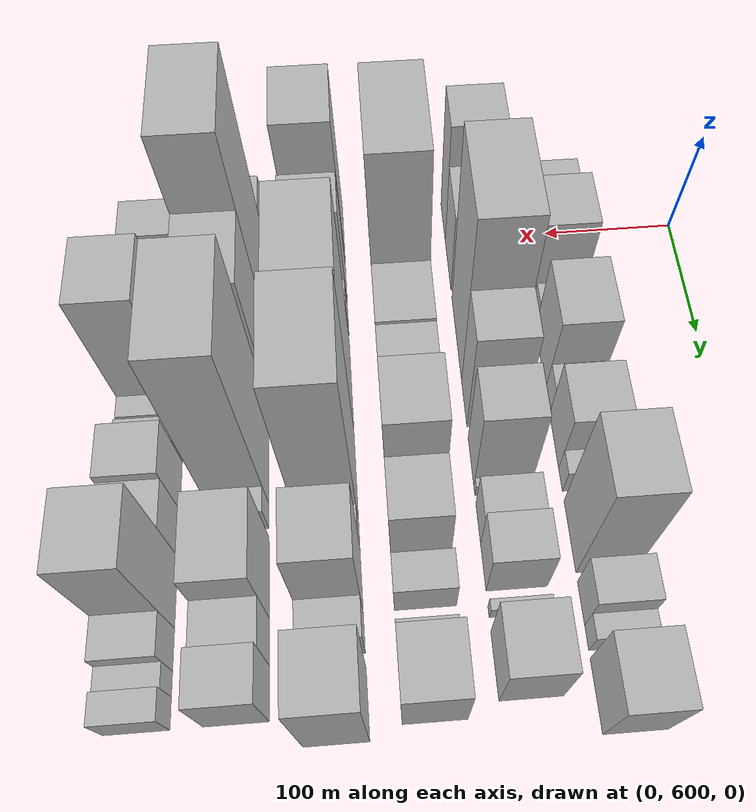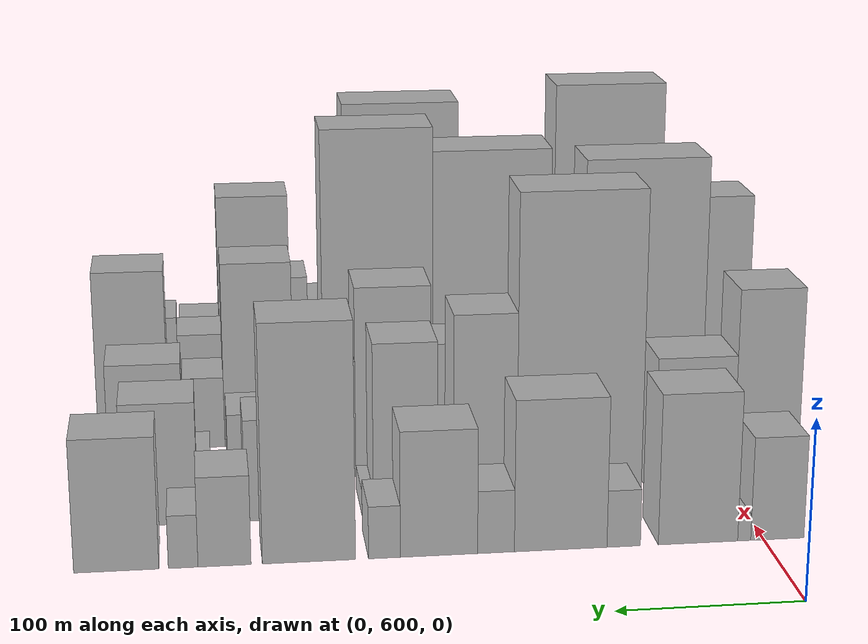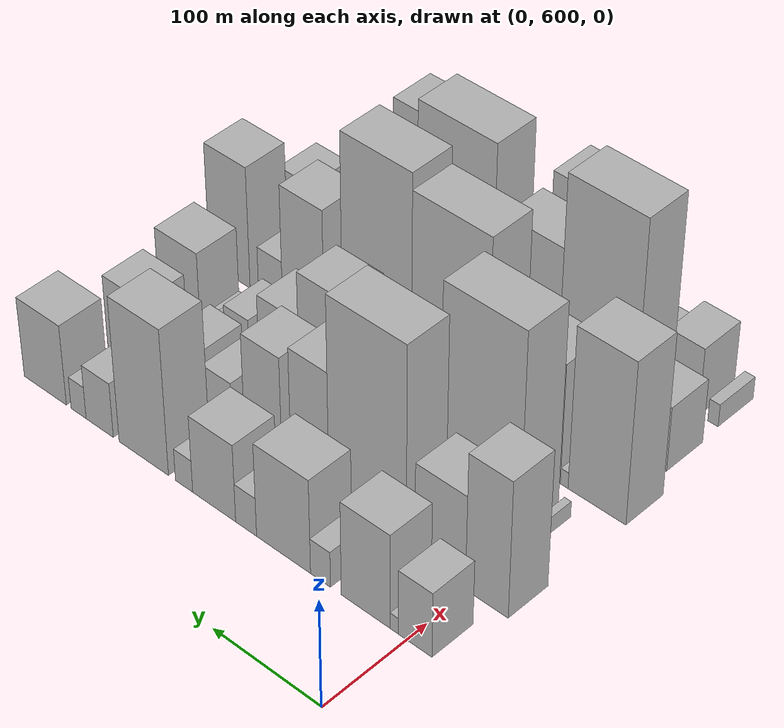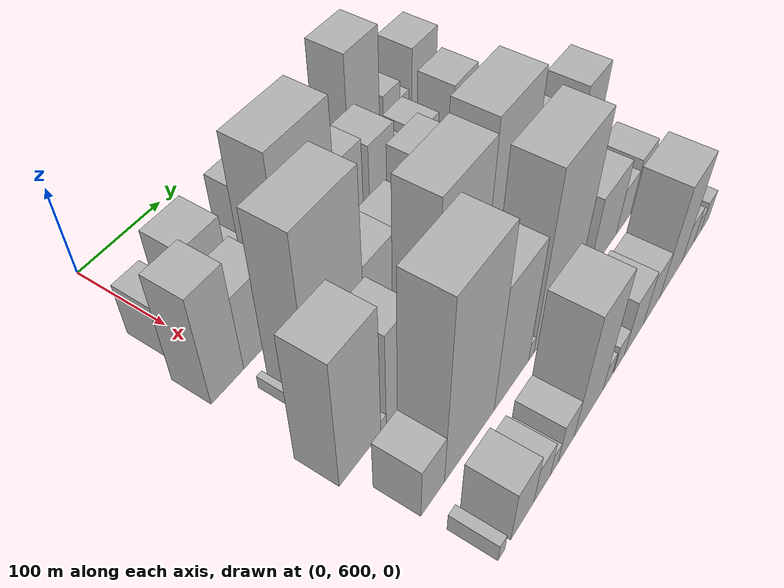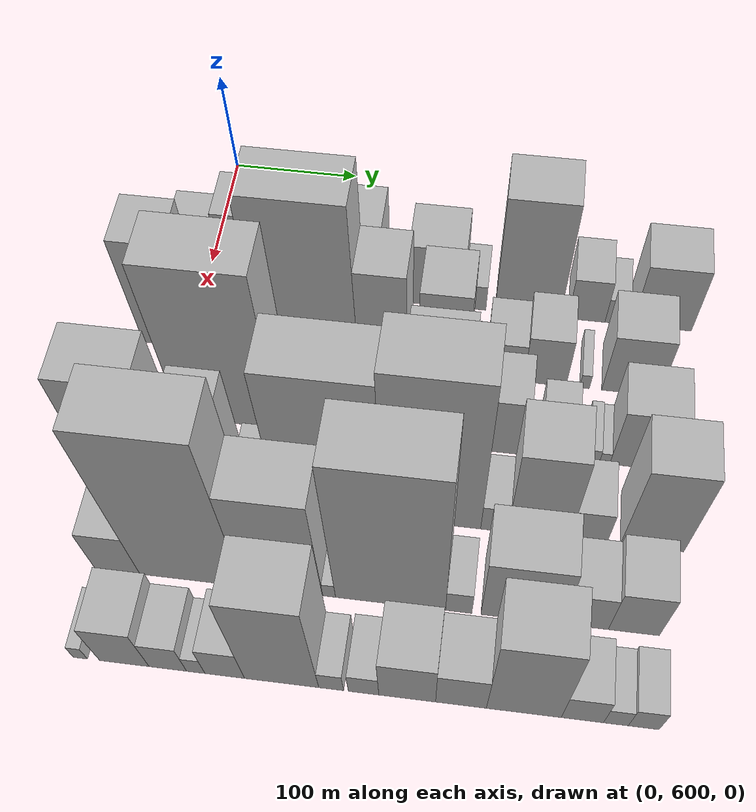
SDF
<sdf version="1.6">
 <world name="default">
  <model name="building_45">
   <static>1</static>
   <pose>100.0000 592.5048 0 0.000000 0.000000 0.000000</pose>
   <link name="link">
    <pose>0 0 30.00 0 0 0</pose>
    <collision name="collision"><geometry><box><size>40.0000 30.1340 60.0000</size></box></geometry></collision>
    <visual name="visual">
     <cast_shadows>0</cast_shadows>
     <geometry><box><size>40.0000 30.1340 60.0000</size></box></geometry>
     <material>
      <script>
       <uri>model://HANNAS_wall/materials/scripts</uri>
       <uri>model://HANNAS_wall/materials/textures</uri>
       <name>vrc/HANNAS_wall</name>
      </script>
     </material>
    </visual>
   </link>
  </model>
  <model name="building_46">
   <static>1</static>
   <pose>100.0000 611.2517 0 0.000000 0.000000 0.000000</pose>
   <link name="link">
    <pose>0 0 7.50 0 0 0</pose>
    <collision name="collision"><geometry><box><size>40.0000 7.3597 15.0000</size></box></geometry></collision>
    <visual name="visual">
     <cast_shadows>0</cast_shadows>
     <geometry><box><size>40.0000 7.3597 15.0000</size></box></geometry>
     <material>
      <script>
       <uri>model://HANNAS_wall/materials/scripts</uri>
       <uri>model://HANNAS_wall/materials/textures</uri>
       <name>vrc/HANNAS_wall</name>
      </script>
     </material>
    </visual>
   </link>
  </model>
  <model name="building_47">
   <static>1</static>
   <pose>100.0000 637.2125 0 0.000000 0.000000 0.000000</pose>
   <link name="link">
    <pose>0 0 43.50 0 0 0</pose>
    <collision name="collision"><geometry><box><size>40.0000 44.5620 87.0000</size></box></geometry></collision>
    <visual name="visual">
     <cast_shadows>0</cast_shadows>
     <geometry><box><size>40.0000 44.5620 87.0000</size></box></geometry>
     <material>
      <script>
       <uri>model://HANNAS_wall/materials/scripts</uri>
       <uri>model://HANNAS_wall/materials/textures</uri>
       <name>vrc/HANNAS_wall</name>
      </script>
     </material>
    </visual>
   </link>
  </model>
  <model name="building_48">
   <static>1</static>
   <pose>100.0000 678.7897 0 0.000000 0.000000 0.000000</pose>
   <link name="link">
    <pose>0 0 16.50 0 0 0</pose>
    <collision name="collision"><geometry><box><size>40.0000 18.5924 33.0000</size></box></geometry></collision>
    <visual name="visual">
     <cast_shadows>0</cast_shadows>
     <geometry><box><size>40.0000 18.5924 33.0000</size></box></geometry>
     <material>
      <script>
       <uri>model://HANNAS_wall/materials/scripts</uri>
       <uri>model://HANNAS_wall/materials/textures</uri>
       <name>vrc/HANNAS_wall</name>
      </script>
     </material>
    </visual>
   </link>
  </model>
  <model name="building_49">
   <static>1</static>
   <pose>100.0000 713.6785 0 0.000000 0.000000 0.000000</pose>
   <link name="link">
    <pose>0 0 43.50 0 0 0</pose>
    <collision name="collision"><geometry><box><size>40.0000 51.1852 87.0000</size></box></geometry></collision>
    <visual name="visual">
     <cast_shadows>0</cast_shadows>
     <geometry><box><size>40.0000 51.1852 87.0000</size></box></geometry>
     <material>
      <script>
       <uri>model://HANNAS_wall/materials/scripts</uri>
       <uri>model://HANNAS_wall/materials/textures</uri>
       <name>vrc/HANNAS_wall</name>
      </script>
     </material>
    </visual>
   </link>
  </model>
  <model name="building_50">
   <static>1</static>
   <pose>100.0000 749.3650 0 0.000000 0.000000 0.000000</pose>
   <link name="link">
    <pose>0 0 18.00 0 0 0</pose>
    <collision name="collision"><geometry><box><size>40.0000 20.1879 36.0000</size></box></geometry></collision>
    <visual name="visual">
     <cast_shadows>0</cast_shadows>
     <geometry><box><size>40.0000 20.1879 36.0000</size></box></geometry>
     <material>
      <script>
       <uri>model://HANNAS_wall/materials/scripts</uri>
       <uri>model://HANNAS_wall/materials/textures</uri>
       <name>vrc/HANNAS_wall</name>
      </script>
     </material>
    </visual>
   </link>
  </model>
  <model name="building_51">
   <static>1</static>
   <pose>100.0000 780.5557 0 0.000000 0.000000 0.000000</pose>
   <link name="link">
    <pose>0 0 36.00 0 0 0</pose>
    <collision name="collision"><geometry><box><size>40.0000 42.1935 72.0000</size></box></geometry></collision>
    <visual name="visual">
     <cast_shadows>0</cast_shadows>
     <geometry><box><size>40.0000 42.1935 72.0000</size></box></geometry>
     <material>
      <script>
       <uri>model://HANNAS_wall/materials/scripts</uri>
       <uri>model://HANNAS_wall/materials/textures</uri>
       <name>vrc/HANNAS_wall</name>
      </script>
     </material>
    </visual>
   </link>
  </model>
  <model name="building_52">
   <static>1</static>
   <pose>100.0000 810.2517 0 0.000000 0.000000 0.000000</pose>
   <link name="link">
    <pose>0 0 15.00 0 0 0</pose>
    <collision name="collision"><geometry><box><size>40.0000 17.1986 30.0000</size></box></geometry></collision>
    <visual name="visual">
     <cast_shadows>0</cast_shadows>
     <geometry><box><size>40.0000 17.1986 30.0000</size></box></geometry>
     <material>
      <script>
       <uri>model://HANNAS_wall/materials/scripts</uri>
       <uri>model://HANNAS_wall/materials/textures</uri>
       <name>vrc/HANNAS_wall</name>
      </script>
     </material>
    </visual>
   </link>
  </model>
  <model name="building_53">
   <static>1</static>
   <pose>100.0000 850.9183 0 0.000000 0.000000 0.000000</pose>
   <link name="link">
    <pose>0 0 67.50 0 0 0</pose>
    <collision name="collision"><geometry><box><size>40.0000 50.1346 135.0000</size></box></geometry></collision>
    <visual name="visual">
     <cast_shadows>0</cast_shadows>
     <geometry><box><size>40.0000 50.1346 135.0000</size></box></geometry>
     <material>
      <script>
       <uri>model://HANNAS_wall/materials/scripts</uri>
       <uri>model://HANNAS_wall/materials/textures</uri>
       <name>vrc/HANNAS_wall</name>
      </script>
     </material>
    </visual>
   </link>
  </model>
  <model name="building_54">
   <static>1</static>
   <pose>100.0000 896.1331 0 0.000000 0.000000 0.000000</pose>
   <link name="link">
    <pose>0 0 25.50 0 0 0</pose>
    <collision name="collision"><geometry><box><size>40.0000 28.2950 51.0000</size></box></geometry></collision>
    <visual name="visual">
     <cast_shadows>0</cast_shadows>
     <geometry><box><size>40.0000 28.2950 51.0000</size></box></geometry>
     <material>
      <script>
       <uri>model://HANNAS_wall/materials/scripts</uri>
       <uri>model://HANNAS_wall/materials/textures</uri>
       <name>vrc/HANNAS_wall</name>
      </script>
     </material>
    </visual>
   </link>
  </model>
  <model name="building_55">
   <static>1</static>
   <pose>100.0000 918.1564 0 0.000000 0.000000 0.000000</pose>
   <link name="link">
    <pose>0 0 15.00 0 0 0</pose>
    <collision name="collision"><geometry><box><size>40.0000 15.7516 30.0000</size></box></geometry></collision>
    <visual name="visual">
     <cast_shadows>0</cast_shadows>
     <geometry><box><size>40.0000 15.7516 30.0000</size></box></geometry>
     <material>
      <script>
       <uri>model://HANNAS_wall/materials/scripts</uri>
       <uri>model://HANNAS_wall/materials/textures</uri>
       <name>vrc/HANNAS_wall</name>
      </script>
     </material>
    </visual>
   </link>
  </model>
  <model name="building_56">
   <static>1</static>
   <pose>100.0000 953.4646 0 0.000000 0.000000 0.000000</pose>
   <link name="link">
    <pose>0 0 37.50 0 0 0</pose>
    <collision name="collision"><geometry><box><size>40.0000 44.8649 75.0000</size></box></geometry></collision>
    <visual name="visual">
     <cast_shadows>0</cast_shadows>
     <geometry><box><size>40.0000 44.8649 75.0000</size></box></geometry>
     <material>
      <script>
       <uri>model://HANNAS_wall/materials/scripts</uri>
       <uri>model://HANNAS_wall/materials/textures</uri>
       <name>vrc/HANNAS_wall</name>
      </script>
     </material>
    </visual>
   </link>
  </model>
  <model name="building_100">
   <static>1</static>
   <pose>160.0000 583.1754 0 0.000000 0.000000 0.000000</pose>
   <link name="link">
    <pose>0 0 63.00 0 0 0</pose>
    <collision name="collision"><geometry><box><size>40.0000 38.1001 126.0000</size></box></geometry></collision>
    <visual name="visual">
     <cast_shadows>0</cast_shadows>
     <geometry><box><size>40.0000 38.1001 126.0000</size></box></geometry>
     <material>
      <script>
       <uri>model://HANNAS_wall/materials/scripts</uri>
       <uri>model://HANNAS_wall/materials/textures</uri>
       <name>vrc/HANNAS_wall</name>
      </script>
     </material>
    </visual>
   </link>
  </model>
  <model name="building_101">
   <static>1</static>
   <pose>160.0000 625.2225 0 0.000000 0.000000 0.000000</pose>
   <link name="link">
    <pose>0 0 43.50 0 0 0</pose>
    <collision name="collision"><geometry><box><size>40.0000 45.9942 87.0000</size></box></geometry></collision>
    <visual name="visual">
     <cast_shadows>0</cast_shadows>
     <geometry><box><size>40.0000 45.9942 87.0000</size></box></geometry>
     <material>
      <script>
       <uri>model://HANNAS_wall/materials/scripts</uri>
       <uri>model://HANNAS_wall/materials/textures</uri>
       <name>vrc/HANNAS_wall</name>
      </script>
     </material>
    </visual>
   </link>
  </model>
  <model name="building_102">
   <static>1</static>
   <pose>160.0000 692.4335 0 0.000000 0.000000 0.000000</pose>
   <link name="link">
    <pose>0 0 93.00 0 0 0</pose>
    <collision name="collision"><geometry><box><size>40.0000 72.4277 186.0000</size></box></geometry></collision>
    <visual name="visual">
     <cast_shadows>0</cast_shadows>
     <geometry><box><size>40.0000 72.4277 186.0000</size></box></geometry>
     <material>
      <script>
       <uri>model://HANNAS_wall/materials/scripts</uri>
       <uri>model://HANNAS_wall/materials/textures</uri>
       <name>vrc/HANNAS_wall</name>
      </script>
     </material>
    </visual>
   </link>
  </model>
  <model name="building_103">
   <static>1</static>
   <pose>160.0000 746.8569 0 0.000000 0.000000 0.000000</pose>
   <link name="link">
    <pose>0 0 58.50 0 0 0</pose>
    <collision name="collision"><geometry><box><size>40.0000 36.4192 117.0000</size></box></geometry></collision>
    <visual name="visual">
     <cast_shadows>0</cast_shadows>
     <geometry><box><size>40.0000 36.4192 117.0000</size></box></geometry>
     <material>
      <script>
       <uri>model://HANNAS_wall/materials/scripts</uri>
       <uri>model://HANNAS_wall/materials/textures</uri>
       <name>vrc/HANNAS_wall</name>
      </script>
     </material>
    </visual>
   </link>
  </model>
  <model name="building_104">
   <static>1</static>
   <pose>160.0000 792.4206 0 0.000000 0.000000 0.000000</pose>
   <link name="link">
    <pose>0 0 51.00 0 0 0</pose>
    <collision name="collision"><geometry><box><size>40.0000 36.7081 102.0000</size></box></geometry></collision>
    <visual name="visual">
     <cast_shadows>0</cast_shadows>
     <geometry><box><size>40.0000 36.7081 102.0000</size></box></geometry>
     <material>
      <script>
       <uri>model://HANNAS_wall/materials/scripts</uri>
       <uri>model://HANNAS_wall/materials/textures</uri>
       <name>vrc/HANNAS_wall</name>
      </script>
     </material>
    </visual>
   </link>
  </model>
  <model name="building_105">
   <static>1</static>
   <pose>160.0000 814.0098 0 0.000000 0.000000 0.000000</pose>
   <link name="link">
    <pose>0 0 7.50 0 0 0</pose>
    <collision name="collision"><geometry><box><size>40.0000 6.4702 15.0000</size></box></geometry></collision>
    <visual name="visual">
     <cast_shadows>0</cast_shadows>
     <geometry><box><size>40.0000 6.4702 15.0000</size></box></geometry>
     <material>
      <script>
       <uri>model://HANNAS_wall/materials/scripts</uri>
       <uri>model://HANNAS_wall/materials/textures</uri>
       <name>vrc/HANNAS_wall</name>
      </script>
     </material>
    </visual>
   </link>
  </model>
  <model name="building_106">
   <static>1</static>
   <pose>160.0000 837.6102 0 0.000000 0.000000 0.000000</pose>
   <link name="link">
    <pose>0 0 24.00 0 0 0</pose>
    <collision name="collision"><geometry><box><size>40.0000 28.7307 48.0000</size></box></geometry></collision>
    <visual name="visual">
     <cast_shadows>0</cast_shadows>
     <geometry><box><size>40.0000 28.7307 48.0000</size></box></geometry>
     <material>
      <script>
       <uri>model://HANNAS_wall/materials/scripts</uri>
       <uri>model://HANNAS_wall/materials/textures</uri>
       <name>vrc/HANNAS_wall</name>
      </script>
     </material>
    </visual>
   </link>
  </model>
  <model name="building_107">
   <static>1</static>
   <pose>160.0000 867.7300 0 0.000000 0.000000 0.000000</pose>
   <link name="link">
    <pose>0 0 30.00 0 0 0</pose>
    <collision name="collision"><geometry><box><size>40.0000 31.5089 60.0000</size></box></geometry></collision>
    <visual name="visual">
     <cast_shadows>0</cast_shadows>
     <geometry><box><size>40.0000 31.5089 60.0000</size></box></geometry>
     <material>
      <script>
       <uri>model://HANNAS_wall/materials/scripts</uri>
       <uri>model://HANNAS_wall/materials/textures</uri>
       <name>vrc/HANNAS_wall</name>
      </script>
     </material>
    </visual>
   </link>
  </model>
  <model name="building_108">
   <static>1</static>
   <pose>160.0000 897.1105 0 0.000000 0.000000 0.000000</pose>
   <link name="link">
    <pose>0 0 9.00 0 0 0</pose>
    <collision name="collision"><geometry><box><size>40.0000 7.2520 18.0000</size></box></geometry></collision>
    <visual name="visual">
     <cast_shadows>0</cast_shadows>
     <geometry><box><size>40.0000 7.2520 18.0000</size></box></geometry>
     <material>
      <script>
       <uri>model://HANNAS_wall/materials/scripts</uri>
       <uri>model://HANNAS_wall/materials/textures</uri>
       <name>vrc/HANNAS_wall</name>
      </script>
     </material>
    </visual>
   </link>
  </model>
  <model name="building_109">
   <static>1</static>
   <pose>160.0000 930.8496 0 0.000000 0.000000 0.000000</pose>
   <link name="link">
    <pose>0 0 36.00 0 0 0</pose>
    <collision name="collision"><geometry><box><size>40.0000 42.2262 72.0000</size></box></geometry></collision>
    <visual name="visual">
     <cast_shadows>0</cast_shadows>
     <geometry><box><size>40.0000 42.2262 72.0000</size></box></geometry>
     <material>
      <script>
       <uri>model://HANNAS_wall/materials/scripts</uri>
       <uri>model://HANNAS_wall/materials/textures</uri>
       <name>vrc/HANNAS_wall</name>
      </script>
     </material>
    </visual>
   </link>
  </model>
  <model name="building_152">
   <static>1</static>
   <pose>220.0000 598.5504 0 0.000000 0.000000 0.000000</pose>
   <link name="link">
    <pose>0 0 7.50 0 0 0</pose>
    <collision name="collision"><geometry><box><size>40.0000 6.3039 15.0000</size></box></geometry></collision>
    <visual name="visual">
     <cast_shadows>0</cast_shadows>
     <geometry><box><size>40.0000 6.3039 15.0000</size></box></geometry>
     <material>
      <script>
       <uri>model://HANNAS_wall/materials/scripts</uri>
       <uri>model://HANNAS_wall/materials/textures</uri>
       <name>vrc/HANNAS_wall</name>
      </script>
     </material>
    </visual>
   </link>
  </model>
  <model name="building_153">
   <static>1</static>
   <pose>220.0000 643.3103 0 0.000000 0.000000 0.000000</pose>
   <link name="link">
    <pose>0 0 94.50 0 0 0</pose>
    <collision name="collision"><geometry><box><size>40.0000 73.2158 189.0000</size></box></geometry></collision>
    <visual name="visual">
     <cast_shadows>0</cast_shadows>
     <geometry><box><size>40.0000 73.2158 189.0000</size></box></geometry>
     <material>
      <script>
       <uri>model://HANNAS_wall/materials/scripts</uri>
       <uri>model://HANNAS_wall/materials/textures</uri>
       <name>vrc/HANNAS_wall</name>
      </script>
     </material>
    </visual>
   </link>
  </model>
  <model name="building_154">
   <static>1</static>
   <pose>220.0000 703.0220 0 0.000000 0.000000 0.000000</pose>
   <link name="link">
    <pose>0 0 42.00 0 0 0</pose>
    <collision name="collision"><geometry><box><size>40.0000 46.2076 84.0000</size></box></geometry></collision>
    <visual name="visual">
     <cast_shadows>0</cast_shadows>
     <geometry><box><size>40.0000 46.2076 84.0000</size></box></geometry>
     <material>
      <script>
       <uri>model://HANNAS_wall/materials/scripts</uri>
       <uri>model://HANNAS_wall/materials/textures</uri>
       <name>vrc/HANNAS_wall</name>
      </script>
     </material>
    </visual>
   </link>
  </model>
  <model name="building_155">
   <static>1</static>
   <pose>220.0000 746.9920 0 0.000000 0.000000 0.000000</pose>
   <link name="link">
    <pose>0 0 40.50 0 0 0</pose>
    <collision name="collision"><geometry><box><size>40.0000 41.7325 81.0000</size></box></geometry></collision>
    <visual name="visual">
     <cast_shadows>0</cast_shadows>
     <geometry><box><size>40.0000 41.7325 81.0000</size></box></geometry>
     <material>
      <script>
       <uri>model://HANNAS_wall/materials/scripts</uri>
       <uri>model://HANNAS_wall/materials/textures</uri>
       <name>vrc/HANNAS_wall</name>
      </script>
     </material>
    </visual>
   </link>
  </model>
  <model name="building_156">
   <static>1</static>
   <pose>220.0000 793.3631 0 0.000000 0.000000 0.000000</pose>
   <link name="link">
    <pose>0 0 58.50 0 0 0</pose>
    <collision name="collision"><geometry><box><size>40.0000 45.0097 117.0000</size></box></geometry></collision>
    <visual name="visual">
     <cast_shadows>0</cast_shadows>
     <geometry><box><size>40.0000 45.0097 117.0000</size></box></geometry>
     <material>
      <script>
       <uri>model://HANNAS_wall/materials/scripts</uri>
       <uri>model://HANNAS_wall/materials/textures</uri>
       <name>vrc/HANNAS_wall</name>
      </script>
     </material>
    </visual>
   </link>
  </model>
  <model name="building_157">
   <static>1</static>
   <pose>220.0000 836.2238 0 0.000000 0.000000 0.000000</pose>
   <link name="link">
    <pose>0 0 36.00 0 0 0</pose>
    <collision name="collision"><geometry><box><size>40.0000 40.7116 72.0000</size></box></geometry></collision>
    <visual name="visual">
     <cast_shadows>0</cast_shadows>
     <geometry><box><size>40.0000 40.7116 72.0000</size></box></geometry>
     <material>
      <script>
       <uri>model://HANNAS_wall/materials/scripts</uri>
       <uri>model://HANNAS_wall/materials/textures</uri>
       <name>vrc/HANNAS_wall</name>
      </script>
     </material>
    </visual>
   </link>
  </model>
  <model name="building_158">
   <static>1</static>
   <pose>220.0000 879.0584 0 0.000000 0.000000 0.000000</pose>
   <link name="link">
    <pose>0 0 21.00 0 0 0</pose>
    <collision name="collision"><geometry><box><size>40.0000 24.9577 42.0000</size></box></geometry></collision>
    <visual name="visual">
     <cast_shadows>0</cast_shadows>
     <geometry><box><size>40.0000 24.9577 42.0000</size></box></geometry>
     <material>
      <script>
       <uri>model://HANNAS_wall/materials/scripts</uri>
       <uri>model://HANNAS_wall/materials/textures</uri>
       <name>vrc/HANNAS_wall</name>
      </script>
     </material>
    </visual>
   </link>
  </model>
  <model name="building_159">
   <static>1</static>
   <pose>220.0000 905.7860 0 0.000000 0.000000 0.000000</pose>
   <link name="link">
    <pose>0 0 9.00 0 0 0</pose>
    <collision name="collision"><geometry><box><size>40.0000 8.4975 18.0000</size></box></geometry></collision>
    <visual name="visual">
     <cast_shadows>0</cast_shadows>
     <geometry><box><size>40.0000 8.4975 18.0000</size></box></geometry>
     <material>
      <script>
       <uri>model://HANNAS_wall/materials/scripts</uri>
       <uri>model://HANNAS_wall/materials/textures</uri>
       <name>vrc/HANNAS_wall</name>
      </script>
     </material>
    </visual>
   </link>
  </model>
  <model name="building_160">
   <static>1</static>
   <pose>220.0000 913.6924 0 0.000000 0.000000 0.000000</pose>
   <link name="link">
    <pose>0 0 7.50 0 0 0</pose>
    <collision name="collision"><geometry><box><size>40.0000 7.3152 15.0000</size></box></geometry></collision>
    <visual name="visual">
     <cast_shadows>0</cast_shadows>
     <geometry><box><size>40.0000 7.3152 15.0000</size></box></geometry>
     <material>
      <script>
       <uri>model://HANNAS_wall/materials/scripts</uri>
       <uri>model://HANNAS_wall/materials/textures</uri>
       <name>vrc/HANNAS_wall</name>
      </script>
     </material>
    </visual>
   </link>
  </model>
  <model name="building_161">
   <static>1</static>
   <pose>220.0000 939.1706 0 0.000000 0.000000 0.000000</pose>
   <link name="link">
    <pose>0 0 37.50 0 0 0</pose>
    <collision name="collision"><geometry><box><size>40.0000 43.6412 75.0000</size></box></geometry></collision>
    <visual name="visual">
     <cast_shadows>0</cast_shadows>
     <geometry><box><size>40.0000 43.6412 75.0000</size></box></geometry>
     <material>
      <script>
       <uri>model://HANNAS_wall/materials/scripts</uri>
       <uri>model://HANNAS_wall/materials/textures</uri>
       <name>vrc/HANNAS_wall</name>
      </script>
     </material>
    </visual>
   </link>
  </model>
  <model name="building_202">
   <static>1</static>
   <pose>280.0000 588.8527 0 0.000000 0.000000 0.000000</pose>
   <link name="link">
    <pose>0 0 75.00 0 0 0</pose>
    <collision name="collision"><geometry><box><size>40.0000 51.9993 150.0000</size></box></geometry></collision>
    <visual name="visual">
     <cast_shadows>0</cast_shadows>
     <geometry><box><size>40.0000 51.9993 150.0000</size></box></geometry>
     <material>
      <script>
       <uri>model://HANNAS_wall/materials/scripts</uri>
       <uri>model://HANNAS_wall/materials/textures</uri>
       <name>vrc/HANNAS_wall</name>
      </script>
     </material>
    </visual>
   </link>
  </model>
  <model name="building_203">
   <static>1</static>
   <pose>280.0000 618.3653 0 0.000000 0.000000 0.000000</pose>
   <link name="link">
    <pose>0 0 7.50 0 0 0</pose>
    <collision name="collision"><geometry><box><size>40.0000 7.0261 15.0000</size></box></geometry></collision>
    <visual name="visual">
     <cast_shadows>0</cast_shadows>
     <geometry><box><size>40.0000 7.0261 15.0000</size></box></geometry>
     <material>
      <script>
       <uri>model://HANNAS_wall/materials/scripts</uri>
       <uri>model://HANNAS_wall/materials/textures</uri>
       <name>vrc/HANNAS_wall</name>
      </script>
     </material>
    </visual>
   </link>
  </model>
  <model name="building_204">
   <static>1</static>
   <pose>280.0000 639.2910 0 0.000000 0.000000 0.000000</pose>
   <link name="link">
    <pose>0 0 55.50 0 0 0</pose>
    <collision name="collision"><geometry><box><size>40.0000 34.8253 111.0000</size></box></geometry></collision>
    <visual name="visual">
     <cast_shadows>0</cast_shadows>
     <geometry><box><size>40.0000 34.8253 111.0000</size></box></geometry>
     <material>
      <script>
       <uri>model://HANNAS_wall/materials/scripts</uri>
       <uri>model://HANNAS_wall/materials/textures</uri>
       <name>vrc/HANNAS_wall</name>
      </script>
     </material>
    </visual>
   </link>
  </model>
  <model name="building_205">
   <static>1</static>
   <pose>280.0000 672.7500 0 0.000000 0.000000 0.000000</pose>
   <link name="link">
    <pose>0 0 21.00 0 0 0</pose>
    <collision name="collision"><geometry><box><size>40.0000 22.0927 42.0000</size></box></geometry></collision>
    <visual name="visual">
     <cast_shadows>0</cast_shadows>
     <geometry><box><size>40.0000 22.0927 42.0000</size></box></geometry>
     <material>
      <script>
       <uri>model://HANNAS_wall/materials/scripts</uri>
       <uri>model://HANNAS_wall/materials/textures</uri>
       <name>vrc/HANNAS_wall</name>
      </script>
     </material>
    </visual>
   </link>
  </model>
  <model name="building_206">
   <static>1</static>
   <pose>280.0000 726.2646 0 0.000000 0.000000 0.000000</pose>
   <link name="link">
    <pose>0 0 91.50 0 0 0</pose>
    <collision name="collision"><geometry><box><size>40.0000 72.9364 183.0000</size></box></geometry></collision>
    <visual name="visual">
     <cast_shadows>0</cast_shadows>
     <geometry><box><size>40.0000 72.9364 183.0000</size></box></geometry>
     <material>
      <script>
       <uri>model://HANNAS_wall/materials/scripts</uri>
       <uri>model://HANNAS_wall/materials/textures</uri>
       <name>vrc/HANNAS_wall</name>
      </script>
     </material>
    </visual>
   </link>
  </model>
  <model name="building_207">
   <static>1</static>
   <pose>280.0000 796.7992 0 0.000000 0.000000 0.000000</pose>
   <link name="link">
    <pose>0 0 99.00 0 0 0</pose>
    <collision name="collision"><geometry><box><size>40.0000 68.1327 198.0000</size></box></geometry></collision>
    <visual name="visual">
     <cast_shadows>0</cast_shadows>
     <geometry><box><size>40.0000 68.1327 198.0000</size></box></geometry>
     <material>
      <script>
       <uri>model://HANNAS_wall/materials/scripts</uri>
       <uri>model://HANNAS_wall/materials/textures</uri>
       <name>vrc/HANNAS_wall</name>
      </script>
     </material>
    </visual>
   </link>
  </model>
  <model name="building_208">
   <static>1</static>
   <pose>280.0000 840.1516 0 0.000000 0.000000 0.000000</pose>
   <link name="link">
    <pose>0 0 18.00 0 0 0</pose>
    <collision name="collision"><geometry><box><size>40.0000 18.5721 36.0000</size></box></geometry></collision>
    <visual name="visual">
     <cast_shadows>0</cast_shadows>
     <geometry><box><size>40.0000 18.5721 36.0000</size></box></geometry>
     <material>
      <script>
       <uri>model://HANNAS_wall/materials/scripts</uri>
       <uri>model://HANNAS_wall/materials/textures</uri>
       <name>vrc/HANNAS_wall</name>
      </script>
     </material>
    </visual>
   </link>
  </model>
  <model name="building_209">
   <static>1</static>
   <pose>280.0000 870.7716 0 0.000000 0.000000 0.000000</pose>
   <link name="link">
    <pose>0 0 58.50 0 0 0</pose>
    <collision name="collision"><geometry><box><size>40.0000 42.6681 117.0000</size></box></geometry></collision>
    <visual name="visual">
     <cast_shadows>0</cast_shadows>
     <geometry><box><size>40.0000 42.6681 117.0000</size></box></geometry>
     <material>
      <script>
       <uri>model://HANNAS_wall/materials/scripts</uri>
       <uri>model://HANNAS_wall/materials/textures</uri>
       <name>vrc/HANNAS_wall</name>
      </script>
     </material>
    </visual>
   </link>
  </model>
  <model name="building_210">
   <static>1</static>
   <pose>280.0000 904.6788 0 0.000000 0.000000 0.000000</pose>
   <link name="link">
    <pose>0 0 22.50 0 0 0</pose>
    <collision name="collision"><geometry><box><size>40.0000 25.1463 45.0000</size></box></geometry></collision>
    <visual name="visual">
     <cast_shadows>0</cast_shadows>
     <geometry><box><size>40.0000 25.1463 45.0000</size></box></geometry>
     <material>
      <script>
       <uri>model://HANNAS_wall/materials/scripts</uri>
       <uri>model://HANNAS_wall/materials/textures</uri>
       <name>vrc/HANNAS_wall</name>
      </script>
     </material>
    </visual>
   </link>
  </model>
  <model name="building_211">
   <static>1</static>
   <pose>280.0000 947.7522 0 0.000000 0.000000 0.000000</pose>
   <link name="link">
    <pose>0 0 57.00 0 0 0</pose>
    <collision name="collision"><geometry><box><size>40.0000 43.0006 114.0000</size></box></geometry></collision>
    <visual name="visual">
     <cast_shadows>0</cast_shadows>
     <geometry><box><size>40.0000 43.0006 114.0000</size></box></geometry>
     <material>
      <script>
       <uri>model://HANNAS_wall/materials/scripts</uri>
       <uri>model://HANNAS_wall/materials/textures</uri>
       <name>vrc/HANNAS_wall</name>
      </script>
     </material>
    </visual>
   </link>
  </model>
  <model name="building_258">
   <static>1</static>
   <pose>340.0000 591.2987 0 0.000000 0.000000 0.000000</pose>
   <link name="link">
    <pose>0 0 30.00 0 0 0</pose>
    <collision name="collision"><geometry><box><size>40.0000 30.7840 60.0000</size></box></geometry></collision>
    <visual name="visual">
     <cast_shadows>0</cast_shadows>
     <geometry><box><size>40.0000 30.7840 60.0000</size></box></geometry>
     <material>
      <script>
       <uri>model://HANNAS_wall/materials/scripts</uri>
       <uri>model://HANNAS_wall/materials/textures</uri>
       <name>vrc/HANNAS_wall</name>
      </script>
     </material>
    </visual>
   </link>
  </model>
  <model name="building_259">
   <static>1</static>
   <pose>340.0000 641.9188 0 0.000000 0.000000 0.000000</pose>
   <link name="link">
    <pose>0 0 105.00 0 0 0</pose>
    <collision name="collision"><geometry><box><size>40.0000 70.4563 210.0000</size></box></geometry></collision>
    <visual name="visual">
     <cast_shadows>0</cast_shadows>
     <geometry><box><size>40.0000 70.4563 210.0000</size></box></geometry>
     <material>
      <script>
       <uri>model://HANNAS_wall/materials/scripts</uri>
       <uri>model://HANNAS_wall/materials/textures</uri>
       <name>vrc/HANNAS_wall</name>
      </script>
     </material>
    </visual>
   </link>
  </model>
  <model name="building_260">
   <static>1</static>
   <pose>340.0000 704.0969 0 0.000000 0.000000 0.000000</pose>
   <link name="link">
    <pose>0 0 72.00 0 0 0</pose>
    <collision name="collision"><geometry><box><size>40.0000 53.8998 144.0000</size></box></geometry></collision>
    <visual name="visual">
     <cast_shadows>0</cast_shadows>
     <geometry><box><size>40.0000 53.8998 144.0000</size></box></geometry>
     <material>
      <script>
       <uri>model://HANNAS_wall/materials/scripts</uri>
       <uri>model://HANNAS_wall/materials/textures</uri>
       <name>vrc/HANNAS_wall</name>
      </script>
     </material>
    </visual>
   </link>
  </model>
  <model name="building_261">
   <static>1</static>
   <pose>340.0000 735.3154 0 0.000000 0.000000 0.000000</pose>
   <link name="link">
    <pose>0 0 10.50 0 0 0</pose>
    <collision name="collision"><geometry><box><size>40.0000 8.5373 21.0000</size></box></geometry></collision>
    <visual name="visual">
     <cast_shadows>0</cast_shadows>
     <geometry><box><size>40.0000 8.5373 21.0000</size></box></geometry>
     <material>
      <script>
       <uri>model://HANNAS_wall/materials/scripts</uri>
       <uri>model://HANNAS_wall/materials/textures</uri>
       <name>vrc/HANNAS_wall</name>
      </script>
     </material>
    </visual>
   </link>
  </model>
  <model name="building_262">
   <static>1</static>
   <pose>340.0000 776.2907 0 0.000000 0.000000 0.000000</pose>
   <link name="link">
    <pose>0 0 100.50 0 0 0</pose>
    <collision name="collision"><geometry><box><size>40.0000 73.4132 201.0000</size></box></geometry></collision>
    <visual name="visual">
     <cast_shadows>0</cast_shadows>
     <geometry><box><size>40.0000 73.4132 201.0000</size></box></geometry>
     <material>
      <script>
       <uri>model://HANNAS_wall/materials/scripts</uri>
       <uri>model://HANNAS_wall/materials/textures</uri>
       <name>vrc/HANNAS_wall</name>
      </script>
     </material>
    </visual>
   </link>
  </model>
  <model name="building_263">
   <static>1</static>
   <pose>340.0000 821.6925 0 0.000000 0.000000 0.000000</pose>
   <link name="link">
    <pose>0 0 16.50 0 0 0</pose>
    <collision name="collision"><geometry><box><size>40.0000 17.3905 33.0000</size></box></geometry></collision>
    <visual name="visual">
     <cast_shadows>0</cast_shadows>
     <geometry><box><size>40.0000 17.3905 33.0000</size></box></geometry>
     <material>
      <script>
       <uri>model://HANNAS_wall/materials/scripts</uri>
       <uri>model://HANNAS_wall/materials/textures</uri>
       <name>vrc/HANNAS_wall</name>
      </script>
     </material>
    </visual>
   </link>
  </model>
  <model name="building_264">
   <static>1</static>
   <pose>340.0000 863.3874 0 0.000000 0.000000 0.000000</pose>
   <link name="link">
    <pose>0 0 45.00 0 0 0</pose>
    <collision name="collision"><geometry><box><size>40.0000 53.9994 90.0000</size></box></geometry></collision>
    <visual name="visual">
     <cast_shadows>0</cast_shadows>
     <geometry><box><size>40.0000 53.9994 90.0000</size></box></geometry>
     <material>
      <script>
       <uri>model://HANNAS_wall/materials/scripts</uri>
       <uri>model://HANNAS_wall/materials/textures</uri>
       <name>vrc/HANNAS_wall</name>
      </script>
     </material>
    </visual>
   </link>
  </model>
  <model name="building_265">
   <static>1</static>
   <pose>340.0000 905.1678 0 0.000000 0.000000 0.000000</pose>
   <link name="link">
    <pose>0 0 27.00 0 0 0</pose>
    <collision name="collision"><geometry><box><size>40.0000 29.5613 54.0000</size></box></geometry></collision>
    <visual name="visual">
     <cast_shadows>0</cast_shadows>
     <geometry><box><size>40.0000 29.5613 54.0000</size></box></geometry>
     <material>
      <script>
       <uri>model://HANNAS_wall/materials/scripts</uri>
       <uri>model://HANNAS_wall/materials/textures</uri>
       <name>vrc/HANNAS_wall</name>
      </script>
     </material>
    </visual>
   </link>
  </model>
  <model name="building_266">
   <static>1</static>
   <pose>340.0000 936.5710 0 0.000000 0.000000 0.000000</pose>
   <link name="link">
    <pose>0 0 33.00 0 0 0</pose>
    <collision name="collision"><geometry><box><size>40.0000 33.2452 66.0000</size></box></geometry></collision>
    <visual name="visual">
     <cast_shadows>0</cast_shadows>
     <geometry><box><size>40.0000 33.2452 66.0000</size></box></geometry>
     <material>
      <script>
       <uri>model://HANNAS_wall/materials/scripts</uri>
       <uri>model://HANNAS_wall/materials/textures</uri>
       <name>vrc/HANNAS_wall</name>
      </script>
     </material>
    </visual>
   </link>
  </model>
  <model name="building_313">
   <static>1</static>
   <pose>400.0000 582.5514 0 0.000000 0.000000 0.000000</pose>
   <link name="link">
    <pose>0 0 10.50 0 0 0</pose>
    <collision name="collision"><geometry><box><size>40.0000 9.3535 21.0000</size></box></geometry></collision>
    <visual name="visual">
     <cast_shadows>0</cast_shadows>
     <geometry><box><size>40.0000 9.3535 21.0000</size></box></geometry>
     <material>
      <script>
       <uri>model://HANNAS_wall/materials/scripts</uri>
       <uri>model://HANNAS_wall/materials/textures</uri>
       <name>vrc/HANNAS_wall</name>
      </script>
     </material>
    </visual>
   </link>
  </model>
  <model name="building_314">
   <static>1</static>
   <pose>400.0000 611.5510 0 0.000000 0.000000 0.000000</pose>
   <link name="link">
    <pose>0 0 31.50 0 0 0</pose>
    <collision name="collision"><geometry><box><size>40.0000 32.6457 63.0000</size></box></geometry></collision>
    <visual name="visual">
     <cast_shadows>0</cast_shadows>
     <geometry><box><size>40.0000 32.6457 63.0000</size></box></geometry>
     <material>
      <script>
       <uri>model://HANNAS_wall/materials/scripts</uri>
       <uri>model://HANNAS_wall/materials/textures</uri>
       <name>vrc/HANNAS_wall</name>
      </script>
     </material>
    </visual>
   </link>
  </model>
  <model name="building_315">
   <static>1</static>
   <pose>400.0000 640.1698 0 0.000000 0.000000 0.000000</pose>
   <link name="link">
    <pose>0 0 22.50 0 0 0</pose>
    <collision name="collision"><geometry><box><size>40.0000 24.5920 45.0000</size></box></geometry></collision>
    <visual name="visual">
     <cast_shadows>0</cast_shadows>
     <geometry><box><size>40.0000 24.5920 45.0000</size></box></geometry>
     <material>
      <script>
       <uri>model://HANNAS_wall/materials/scripts</uri>
       <uri>model://HANNAS_wall/materials/textures</uri>
       <name>vrc/HANNAS_wall</name>
      </script>
     </material>
    </visual>
   </link>
  </model>
  <model name="building_316">
   <static>1</static>
   <pose>400.0000 658.4363 0 0.000000 0.000000 0.000000</pose>
   <link name="link">
    <pose>0 0 13.50 0 0 0</pose>
    <collision name="collision"><geometry><box><size>40.0000 11.9409 27.0000</size></box></geometry></collision>
    <visual name="visual">
     <cast_shadows>0</cast_shadows>
     <geometry><box><size>40.0000 11.9409 27.0000</size></box></geometry>
     <material>
      <script>
       <uri>model://HANNAS_wall/materials/scripts</uri>
       <uri>model://HANNAS_wall/materials/textures</uri>
       <name>vrc/HANNAS_wall</name>
      </script>
     </material>
    </visual>
   </link>
  </model>
  <model name="building_317">
   <static>1</static>
   <pose>400.0000 677.2593 0 0.000000 0.000000 0.000000</pose>
   <link name="link">
    <pose>0 0 24.00 0 0 0</pose>
    <collision name="collision"><geometry><box><size>40.0000 25.7051 48.0000</size></box></geometry></collision>
    <visual name="visual">
     <cast_shadows>0</cast_shadows>
     <geometry><box><size>40.0000 25.7051 48.0000</size></box></geometry>
     <material>
      <script>
       <uri>model://HANNAS_wall/materials/scripts</uri>
       <uri>model://HANNAS_wall/materials/textures</uri>
       <name>vrc/HANNAS_wall</name>
      </script>
     </material>
    </visual>
   </link>
  </model>
  <model name="building_318">
   <static>1</static>
   <pose>400.0000 714.1728 0 0.000000 0.000000 0.000000</pose>
   <link name="link">
    <pose>0 0 72.00 0 0 0</pose>
    <collision name="collision"><geometry><box><size>40.0000 48.1220 144.0000</size></box></geometry></collision>
    <visual name="visual">
     <cast_shadows>0</cast_shadows>
     <geometry><box><size>40.0000 48.1220 144.0000</size></box></geometry>
     <material>
      <script>
       <uri>model://HANNAS_wall/materials/scripts</uri>
       <uri>model://HANNAS_wall/materials/textures</uri>
       <name>vrc/HANNAS_wall</name>
      </script>
     </material>
    </visual>
   </link>
  </model>
  <model name="building_319">
   <static>1</static>
   <pose>400.0000 746.2396 0 0.000000 0.000000 0.000000</pose>
   <link name="link">
    <pose>0 0 15.00 0 0 0</pose>
    <collision name="collision"><geometry><box><size>40.0000 16.0116 30.0000</size></box></geometry></collision>
    <visual name="visual">
     <cast_shadows>0</cast_shadows>
     <geometry><box><size>40.0000 16.0116 30.0000</size></box></geometry>
     <material>
      <script>
       <uri>model://HANNAS_wall/materials/scripts</uri>
       <uri>model://HANNAS_wall/materials/textures</uri>
       <name>vrc/HANNAS_wall</name>
      </script>
     </material>
    </visual>
   </link>
  </model>
  <model name="building_320">
   <static>1</static>
   <pose>400.0000 767.0157 0 0.000000 0.000000 0.000000</pose>
   <link name="link">
    <pose>0 0 16.50 0 0 0</pose>
    <collision name="collision"><geometry><box><size>40.0000 19.5406 33.0000</size></box></geometry></collision>
    <visual name="visual">
     <cast_shadows>0</cast_shadows>
     <geometry><box><size>40.0000 19.5406 33.0000</size></box></geometry>
     <material>
      <script>
       <uri>model://HANNAS_wall/materials/scripts</uri>
       <uri>model://HANNAS_wall/materials/textures</uri>
       <name>vrc/HANNAS_wall</name>
      </script>
     </material>
    </visual>
   </link>
  </model>
  <model name="building_321">
   <static>1</static>
   <pose>400.0000 794.8965 0 0.000000 0.000000 0.000000</pose>
   <link name="link">
    <pose>0 0 33.00 0 0 0</pose>
    <collision name="collision"><geometry><box><size>40.0000 36.2210 66.0000</size></box></geometry></collision>
    <visual name="visual">
     <cast_shadows>0</cast_shadows>
     <geometry><box><size>40.0000 36.2210 66.0000</size></box></geometry>
     <material>
      <script>
       <uri>model://HANNAS_wall/materials/scripts</uri>
       <uri>model://HANNAS_wall/materials/textures</uri>
       <name>vrc/HANNAS_wall</name>
      </script>
     </material>
    </visual>
   </link>
  </model>
  <model name="building_322">
   <static>1</static>
   <pose>400.0000 829.1189 0 0.000000 0.000000 0.000000</pose>
   <link name="link">
    <pose>0 0 28.50 0 0 0</pose>
    <collision name="collision"><geometry><box><size>40.0000 32.2238 57.0000</size></box></geometry></collision>
    <visual name="visual">
     <cast_shadows>0</cast_shadows>
     <geometry><box><size>40.0000 32.2238 57.0000</size></box></geometry>
     <material>
      <script>
       <uri>model://HANNAS_wall/materials/scripts</uri>
       <uri>model://HANNAS_wall/materials/textures</uri>
       <name>vrc/HANNAS_wall</name>
      </script>
     </material>
    </visual>
   </link>
  </model>
  <model name="building_323">
   <static>1</static>
   <pose>400.0000 868.7779 0 0.000000 0.000000 0.000000</pose>
   <link name="link">
    <pose>0 0 64.50 0 0 0</pose>
    <collision name="collision"><geometry><box><size>40.0000 47.0942 129.0000</size></box></geometry></collision>
    <visual name="visual">
     <cast_shadows>0</cast_shadows>
     <geometry><box><size>40.0000 47.0942 129.0000</size></box></geometry>
     <material>
      <script>
       <uri>model://HANNAS_wall/materials/scripts</uri>
       <uri>model://HANNAS_wall/materials/textures</uri>
       <name>vrc/HANNAS_wall</name>
      </script>
     </material>
    </visual>
   </link>
  </model>
  <model name="building_324">
   <static>1</static>
   <pose>400.0000 905.5593 0 0.000000 0.000000 0.000000</pose>
   <link name="link">
    <pose>0 0 22.50 0 0 0</pose>
    <collision name="collision"><geometry><box><size>40.0000 26.4685 45.0000</size></box></geometry></collision>
    <visual name="visual">
     <cast_shadows>0</cast_shadows>
     <geometry><box><size>40.0000 26.4685 45.0000</size></box></geometry>
     <material>
      <script>
       <uri>model://HANNAS_wall/materials/scripts</uri>
       <uri>model://HANNAS_wall/materials/textures</uri>
       <name>vrc/HANNAS_wall</name>
      </script>
     </material>
    </visual>
   </link>
  </model>
  <model name="building_325">
   <static>1</static>
   <pose>400.0000 926.5165 0 0.000000 0.000000 0.000000</pose>
   <link name="link">
    <pose>0 0 15.00 0 0 0</pose>
    <collision name="collision"><geometry><box><size>40.0000 15.4460 30.0000</size></box></geometry></collision>
    <visual name="visual">
     <cast_shadows>0</cast_shadows>
     <geometry><box><size>40.0000 15.4460 30.0000</size></box></geometry>
     <material>
      <script>
       <uri>model://HANNAS_wall/materials/scripts</uri>
       <uri>model://HANNAS_wall/materials/textures</uri>
       <name>vrc/HANNAS_wall</name>
      </script>
     </material>
    </visual>
   </link>
  </model>
  <model name="building_326">
   <static>1</static>
   <pose>400.0000 943.8563 0 0.000000 0.000000 0.000000</pose>
   <link name="link">
    <pose>0 0 18.00 0 0 0</pose>
    <collision name="collision"><geometry><box><size>40.0000 19.2335 36.0000</size></box></geometry></collision>
    <visual name="visual">
     <cast_shadows>0</cast_shadows>
     <geometry><box><size>40.0000 19.2335 36.0000</size></box></geometry>
     <material>
      <script>
       <uri>model://HANNAS_wall/materials/scripts</uri>
       <uri>model://HANNAS_wall/materials/textures</uri>
       <name>vrc/HANNAS_wall</name>
      </script>
     </material>
    </visual>
   </link>
  </model>
 </world>
</sdf>
